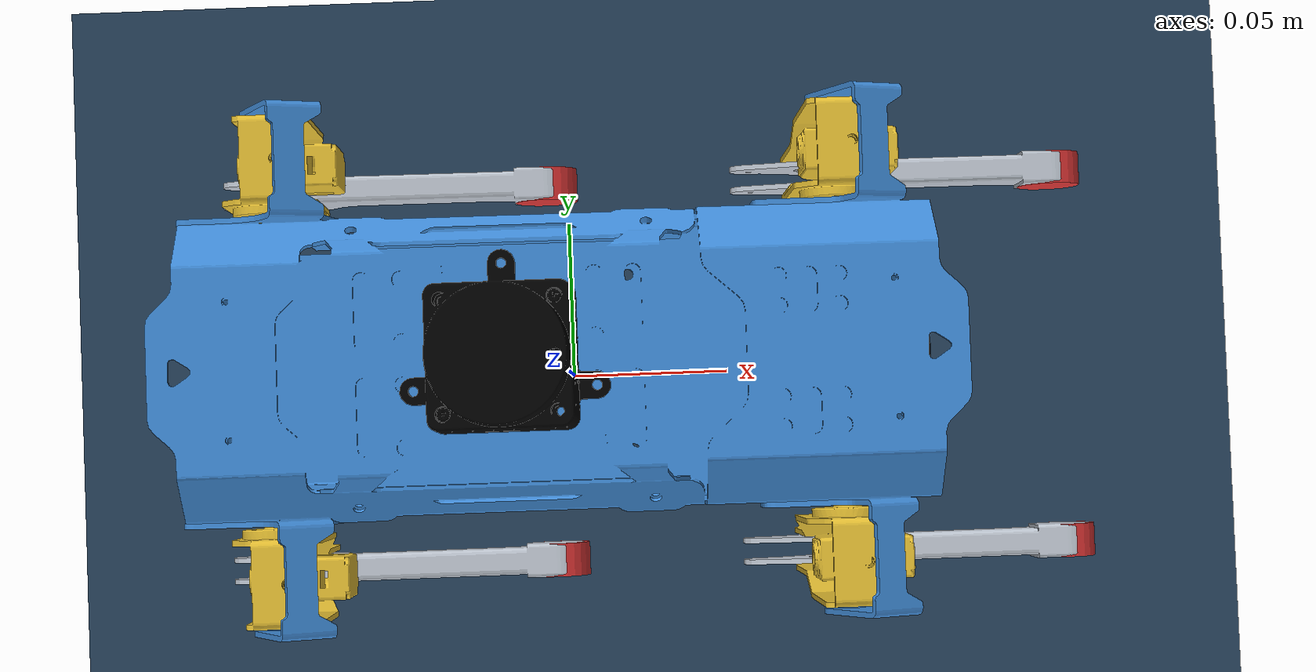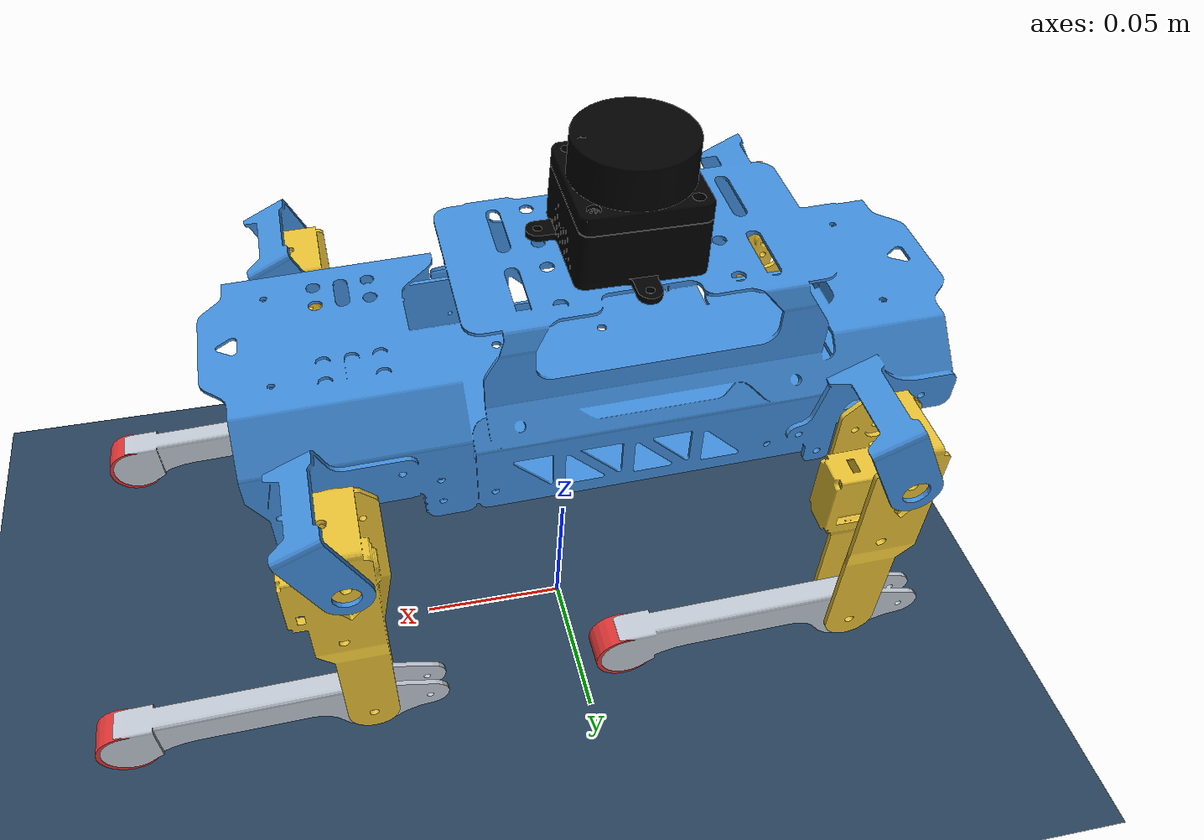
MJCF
<mujoco model="puppy_scene">
  <!-- 로봇 본체는 puppy.xml, 여기는 바닥·조명·카메라만.
       교재가 제공한 scene.xml에는 장애물 박스 8개가 있는데, 교재 안내대로
       초기 테스트에서는 빼 두었다. obstacles.xml로 따로 분리해 두었으니
       보행을 붙일 때 include하면 된다. -->
  <include file="puppy.xml"/>

  <statistic center="0 0 0.08" extent="0.5"/>

  <visual>
    <headlight diffuse="0.6 0.6 0.6" ambient="0.4 0.4 0.4" specular="0.1 0.1 0.1"/>
    <rgba haze="0.15 0.25 0.35 1"/>
    <global azimuth="140" elevation="-20" offwidth="960" offheight="720"/>
  </visual>

  <asset>
    <texture type="skybox" builtin="gradient" rgb1="0.3 0.5 0.7" rgb2="0 0 0"
             width="512" height="3072"/>
    <texture type="2d" name="groundplane" builtin="checker" mark="edge"
             rgb1="0.2 0.3 0.4" rgb2="0.1 0.2 0.3" markrgb="0.8 0.8 0.8"
             width="300" height="300"/>
    <material name="groundplane" texture="groundplane" texuniform="true"
              texrepeat="10 10" reflectance="0.15"/>
  </asset>

  <worldbody>
    <light pos="0.3 -0.3 0.8" dir="-0.3 0.3 -0.8" directional="true"/>
    <!-- 발 friction은 foot 클래스에서 주므로 바닥은 기본값을 쓴다.
         MuJoCo는 두 geom의 friction을 element-wise max로 합친다. -->
    <geom name="floor" size="0 0 0.02" pos="0 0 0" type="plane" material="groundplane"/>
    <camera name="side" pos="0.42 -0.34 0.20" xyaxes="0.63 0.78 0 -0.28 0.22 0.93"/>
  </worldbody>
</mujoco>

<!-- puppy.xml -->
<mujoco model="puppy">
  <compiler angle="radian" meshdir="meshes/"/>

  <option timestep="0.002" integrator="implicitfast"/>

  <default>
    <!-- 다리 관절 동특성. 최상위 body의 childclass로 8개 관절에 상속된다. -->
    <default class="puppy_joint">
      <joint damping="0.02" frictionloss="0.002" armature="0.0015"/>
    </default>

    <!-- position actuator 게인 -->
    <default class="puppy_servo">
      <position kp="5.0" dampratio="1" forcerange="-0.5 0.5"/>
    </default>

    <!-- 발 끝: 유일하게 바닥과 접촉하는 geom -->
    <default class="foot">
      <geom contype="1" conaffinity="1" friction="1.0 0.02 0.001"
            solref="0.008 1" solimp="0.9 0.95 0.001" rgba="0.85 0.2 0.2 1"/>
    </default>
  </default>

  <asset>
    <mesh name="lidar_Link" content_type="model/stl" file="lidar_Link.STL"/>
    <mesh name="base_link" content_type="model/stl" file="base_link.STL"/>
    <mesh name="lb_link1" content_type="model/stl" file="lb_link1.STL"/>
    <mesh name="lb_link2" content_type="model/stl" file="lb_link2.STL"/>
    <mesh name="rb_link1" content_type="model/stl" file="rb_link1.STL"/>
    <mesh name="rb_link2" content_type="model/stl" file="rb_link2.STL"/>
    <mesh name="rf_link1" content_type="model/stl" file="rf_link1.STL"/>
    <mesh name="rf_link2" content_type="model/stl" file="rf_link2.STL"/>
    <mesh name="lf_link1" content_type="model/stl" file="lf_link1.STL"/>
    <mesh name="lf_link2" content_type="model/stl" file="lf_link2.STL"/>
    <mesh name="camera_link" content_type="model/stl" file="camera_link.STL"/>
  </asset>

  <worldbody>
    <body name="base_footprint" childclass="puppy_joint">
      <freejoint name="root"/>
      <body name="base_link" pos="0 0 0.11">
        <body name="base_dummy" quat="0.707388 0 0 0.706825">
          <inertial pos="-0.000281314 -0.00232094 0.0187443" quat="0.487495 0.512122 -0.512201 0.487575" mass="0.0656002" diaginertia="0.000137791 0.000101564 4.70815e-05"/>
          <geom type="mesh" contype="0" conaffinity="0" group="1" density="0" rgba="0.25 0.55 0.85 1" mesh="base_link"/>
          <geom contype="0" conaffinity="0" type="mesh" rgba="0.25 0.55 0.85 1" mesh="base_link"/>
          <body name="lb_link1" pos="0.0420106 0.0778693 0.015988" quat="0.930141 -0.367203 0 0">
            <inertial pos="0.0139911 0.0129617 -0.0150641" quat="0.681953 0.285067 -0.259509 0.621555" mass="0.0101535" diaginertia="5.0547e-06 4.74867e-06 7.53492e-07"/>
            <joint name="lb_joint1" pos="0 0 0" axis="1 0 0" range="-2 2" actuatorfrcrange="-0.5 0.5"/>
            <geom type="mesh" contype="0" conaffinity="0" group="1" density="0" rgba="0.9 0.75 0.2 1" mesh="lb_link1"/>
            <geom contype="0" conaffinity="0" type="mesh" rgba="0.9 0.75 0.2 1" mesh="lb_link1"/>
            <body name="lb_link2" pos="0.0120499 0.0525236 -0.0528775">
              <inertial pos="0.00325 -0.0273004 -0.0228964" quat="0.395706 0.918377 0 0" mass="0.00545593" diaginertia="4.05445e-06 3.95838e-06 2.11118e-07"/>
              <joint name="lb_joint2" pos="0 0 0" axis="1 0 0" range="-2 2" actuatorfrcrange="-0.5 0.5"/>
              <geom type="mesh" contype="0" conaffinity="0" group="1" density="0" rgba="0.75 0.78 0.82 1" mesh="lb_link2"/>
              <geom contype="0" conaffinity="0" type="mesh" rgba="0.75 0.78 0.82 1" mesh="lb_link2"/>
              <body name="lb_link3" pos="0 -0.053 -0.053" quat="0.924909 0.380188 0 0">
                  <site name="lb_foot" pos="0.0032 0 0.001" size="0.004" rgba="1 1 0 1"/>
                <inertial pos="0 0 0" quat="0.5 0.5 -0.5 0.5" mass="0.0391" diaginertia="5.443e-12 3.7713e-12 3.5422e-12"/>
                <geom class="foot" size="0.0095 0.005" pos="0.0032 0 0.001" quat="0.707388 0 0.706825 0" type="cylinder"/>
              </body>
            </body>
          </body>
          <body name="rb_link1" pos="-0.0420106 0.0778693 0.015988" quat="0.930141 -0.367203 0 0">
            <inertial pos="-0.0139912 0.0129616 -0.0150641" quat="0.621547 0.25951 -0.285066 0.681961" mass="0.0101536" diaginertia="5.05471e-06 4.74867e-06 7.53497e-07"/>
            <joint name="rb_joint1" pos="0 0 0" axis="1 0 0" range="-2 2" actuatorfrcrange="-0.5 0.5"/>
            <geom type="mesh" contype="0" conaffinity="0" group="1" density="0" rgba="0.9 0.75 0.2 1" mesh="rb_link1"/>
            <geom contype="0" conaffinity="0" type="mesh" rgba="0.9 0.75 0.2 1" mesh="rb_link1"/>
            <body name="rb_link2" pos="-0.0185499 0.0525236 -0.0528775">
              <inertial pos="0.00325 -0.0273004 -0.0228964" quat="0.395706 0.918377 0 0" mass="0.00545593" diaginertia="4.05445e-06 3.95838e-06 2.11118e-07"/>
              <joint name="rb_joint2" pos="0 0 0" axis="1 0 0" range="-2 2" actuatorfrcrange="-0.5 0.5"/>
              <geom type="mesh" contype="0" conaffinity="0" group="1" density="0" rgba="0.75 0.78 0.82 1" mesh="rb_link2"/>
              <geom contype="0" conaffinity="0" type="mesh" rgba="0.75 0.78 0.82 1" mesh="rb_link2"/>
              <body name="rb_link3" pos="0 -0.053 -0.053" quat="0.924909 0.380188 0 0">
                  <site name="rb_foot" pos="0.0032 0 0.001" size="0.004" rgba="1 1 0 1"/>
                <inertial pos="0 0 0" quat="0.5 0.5 -0.5 0.5" mass="0.0391" diaginertia="5.443e-12 3.7713e-12 3.5422e-12"/>
                <geom class="foot" size="0.0095 0.005" pos="0.0032 0 0.001" quat="0.707388 0 0.706825 0" type="cylinder"/>
              </body>
            </body>
          </body>
          <body name="rf_link1" pos="-0.0420105 -0.0778693 0.0106513" quat="0.930141 -0.367203 0 0">
            <inertial pos="-0.0139912 0.0129616 -0.0150641" quat="0.621547 0.25951 -0.285066 0.681961" mass="0.0101536" diaginertia="5.05471e-06 4.74867e-06 7.53497e-07"/>
            <joint name="rf_joint1" pos="0 0 0" axis="1 0 0" range="-2 2" actuatorfrcrange="-0.5 0.5"/>
            <geom type="mesh" contype="0" conaffinity="0" group="1" density="0" rgba="0.9 0.75 0.2 1" mesh="rf_link1"/>
            <geom contype="0" conaffinity="0" type="mesh" rgba="0.9 0.75 0.2 1" mesh="rf_link1"/>
            <body name="rf_link2" pos="-0.0185499 0.0525236 -0.0528775">
              <inertial pos="0.00325 -0.0273004 -0.0228964" quat="0.395706 0.918377 0 0" mass="0.00545593" diaginertia="4.05445e-06 3.95838e-06 2.11118e-07"/>
              <joint name="rf_joint2" pos="0 0 0" axis="1 0 0" range="-2 2" actuatorfrcrange="-0.5 0.5"/>
              <geom type="mesh" contype="0" conaffinity="0" group="1" density="0" rgba="0.75 0.78 0.82 1" mesh="rf_link2"/>
              <geom contype="0" conaffinity="0" type="mesh" rgba="0.75 0.78 0.82 1" mesh="rf_link2"/>
              <body name="rf_link3" pos="0 -0.053 -0.053" quat="0.924909 0.380188 0 0">
                  <site name="rf_foot" pos="0.0032 0 0.001" size="0.004" rgba="1 1 0 1"/>
                <inertial pos="0 0 0" quat="0.5 0.5 -0.5 0.5" mass="0.0391" diaginertia="5.443e-12 3.7713e-12 3.5422e-12"/>
                <geom class="foot" size="0.0095 0.005" pos="0.0032 0 0.001" quat="0.707388 0 0.706825 0" type="cylinder"/>
              </body>
            </body>
          </body>
          <body name="lf_link1" pos="0.0420105 -0.0778693 0.0106513" quat="0.930141 -0.367203 0 0">
            <inertial pos="0.0139911 0.0129616 -0.0150641" quat="0.681953 0.285067 -0.259509 0.621556" mass="0.0101536" diaginertia="5.05473e-06 4.74868e-06 7.53497e-07"/>
            <joint name="lf_joint1" pos="0 0 0" axis="1 0 0" range="-2 2" actuatorfrcrange="-0.5 0.5"/>
            <geom type="mesh" contype="0" conaffinity="0" group="1" density="0" rgba="0.9 0.75 0.2 1" mesh="lf_link1"/>
            <geom contype="0" conaffinity="0" type="mesh" rgba="0.9 0.75 0.2 1" mesh="lf_link1"/>
            <body name="lf_link2" pos="0.0120499 0.0525236 -0.0528775">
              <inertial pos="0.00325 -0.0273004 -0.0228964" quat="0.395706 0.918377 0 0" mass="0.00545593" diaginertia="4.05445e-06 3.95838e-06 2.11118e-07"/>
              <joint name="lf_joint2" pos="0 0 0" axis="1 0 0" range="-2 2" actuatorfrcrange="-0.5 0.5"/>
              <geom type="mesh" contype="0" conaffinity="0" group="1" density="0" rgba="0.75 0.78 0.82 1" mesh="lf_link2"/>
              <geom contype="0" conaffinity="0" type="mesh" rgba="0.75 0.78 0.82 1" mesh="lf_link2"/>
              <body name="lf_link3" pos="0 -0.053 -0.053" quat="0.924909 0.380188 0 0">
                  <site name="lf_foot" pos="0.0032 0 0.001" size="0.004" rgba="1 1 0 1"/>
                <inertial pos="0 0 0" quat="0.5 0.5 -0.5 0.5" mass="0.0391" diaginertia="5.443e-12 3.7713e-12 3.5422e-12"/>
                <geom class="foot" size="0.0095 0.005" pos="0.0032 0 0.001" quat="0.707388 0 0.706825 0" type="cylinder"/>
              </body>
            </body>
          </body>
          <body name="camera_link" pos="0 -0.100687 0.0171095" quat="0.999853 0.017126 0 0">
            <inertial pos="7.88163e-12 0.00830783 -1.10275e-09" quat="0.5 0.5 -0.5 0.5" mass="0.0025559" diaginertia="8.93985e-08 8.07505e-08 7.57696e-08"/>
            <geom type="mesh" contype="0" conaffinity="0" group="1" density="0" rgba="0 0 0 1" mesh="camera_link"/>
            <geom contype="0" conaffinity="0" type="mesh" rgba="0 0 0 1" mesh="camera_link"/>
          </body>
        </body>
        <body name="lidar_frame" pos="-0.012242 -8.533e-05 0.092501">
          <inertial pos="8.65086e-05 9.02625e-05 -0.0183546" quat="-0.240675 0.665063 0.24282 0.663931" mass="0.0405423" diaginertia="8.2565e-06 5.16844e-06 4.85549e-06"/>
          <geom type="mesh" contype="0" conaffinity="0" group="1" density="0" rgba="0 0 0 1" mesh="lidar_Link"/>
          <geom contype="0" conaffinity="0" type="mesh" rgba="0 0 0 1" mesh="lidar_Link"/>
        </body>
      </body>
    </body>
  </worldbody>
  <actuator>
    <position class="puppy_servo" name="act_lf_joint1" joint="lf_joint1" ctrlrange="-2 2"/>
    <position class="puppy_servo" name="act_lf_joint2" joint="lf_joint2" ctrlrange="-2 2"/>
    <position class="puppy_servo" name="act_rf_joint1" joint="rf_joint1" ctrlrange="-2 2"/>
    <position class="puppy_servo" name="act_rf_joint2" joint="rf_joint2" ctrlrange="-2 2"/>
    <position class="puppy_servo" name="act_lb_joint1" joint="lb_joint1" ctrlrange="-2 2"/>
    <position class="puppy_servo" name="act_lb_joint2" joint="lb_joint2" ctrlrange="-2 2"/>
    <position class="puppy_servo" name="act_rb_joint1" joint="rb_joint1" ctrlrange="-2 2"/>
    <position class="puppy_servo" name="act_rb_joint2" joint="rb_joint2" ctrlrange="-2 2"/>
  </actuator>
  <keyframe>
    <key name="stand" qpos="0.000000 0.000000 -0.000297 1.000000 0.000000 0.000000 0.000000 0.654898 0.215520 0.654898 0.215520 0.709944 0.105968 0.709944 0.105968"
         ctrl="0.709944 0.105968 0.709944 0.105968 0.654898 0.215520 0.654898 0.215520"/>
    <key name="sit" qpos="0.000000 0.000000 -0.030297 1.000000 0.000000 0.000000 0.000000 0.931914 -0.335056 0.931914 -0.335056 0.975315 -0.421071 0.975315 -0.421071"
         ctrl="0.975315 -0.421071 0.975315 -0.421071 0.931914 -0.335056 0.931914 -0.335056"/>
  </keyframe>
</mujoco>
